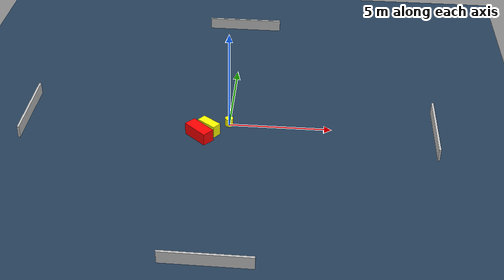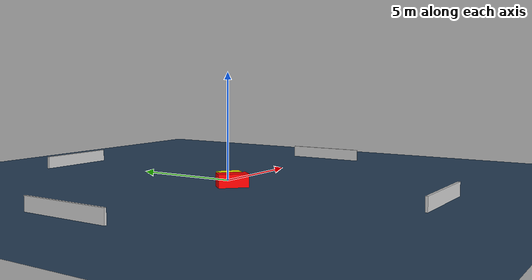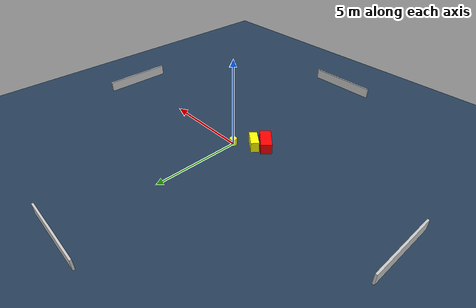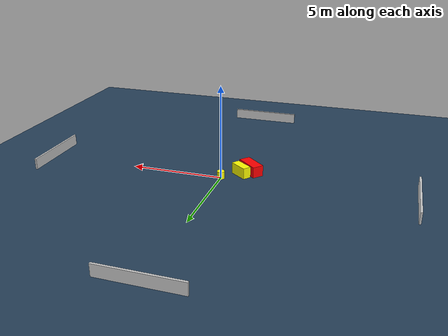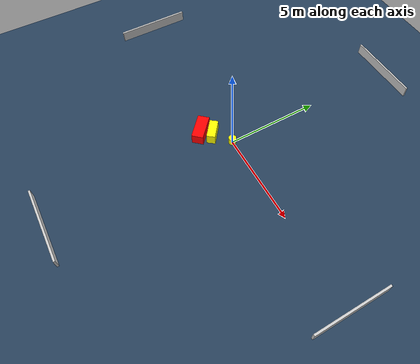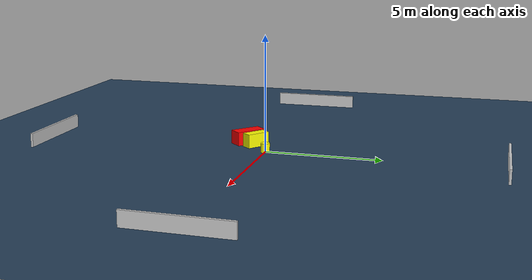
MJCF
<?xml version="1.0" ?>
<mujoco model="generated_environment">
  <option timestep="0.01" integrator="RK4" cone="elliptic"/>
  <default>
    <geom density="1"/>
  </default>
  <asset>
    <texture builtin="gradient" height="3072" name="skybox" rgb1="0.3 0.5 0.7" rgb2="0 0 0" type="skybox" width="512"/>
    <texture builtin="checker" height="300" name="groundplane" rgb1="0.2 0.3 0.4" rgb2="0.1 0.2 0.3" type="2d" width="300"/>
    <material name="groundplane" reflectance="0.2" texrepeat="5 5" texture="groundplane"/>
  </asset>
  <worldbody>
    <light dir="0 0 -1" directional="true" pos="0 0 1.5"/>
    <geom condim="3" friction="0.5 0.005 0.001" material="groundplane" name="floor" pos="0 0 0" size="0 0 0.05" type="plane"/>
    <body name="walls">
      <geom name="wall_1" condim="4" pos="-10.0 0.0 0.3" rgba="0.800000011920929 0.800000011920929 0.800000011920929 1.0" size="0.05 2.0 0.3" type="box"/>
      <geom name="wall_2" condim="4" pos="10.0 0.0 0.3" rgba="0.800000011920929 0.800000011920929 0.800000011920929 1.0" size="0.05 2.0 0.3" type="box"/>
      <geom name="wall_3" condim="4" pos="0.0 -10.0 0.3" rgba="0.800000011920929 0.800000011920929 0.800000011920929 1.0" size="2.0 0.05 0.3" type="box"/>
      <geom name="wall_4" condim="4" pos="0.0 10.0 0.3" rgba="0.800000011920929 0.800000011920929 0.800000011920929 1.0" size="2.0 0.05 0.3" type="box"/>
    </body>
    <body name="robot">
      <joint name="joint_x" type="slide" pos="0 0 0" axis="1 0 0"/>
      <joint name="joint_y" type="slide" pos="0 0 0" axis="0 1 0"/>
      <geom name="robot" type="cylinder" pos="0.0 0.0 0.2" size="0.2 0.2 0.0" mass="5.0" friction="1.0 0.005 0.0001" condim="4" rgba="1.0 1.0 0.0 1.0"/>
    </body>
    <body name="obstacle_1_movable">
      <geom name="obstacle_1_movable" condim="4" pos="-0.91348482469472 -0.6852308927532336 0.3" euler="0 0 322.3606023316455" friction="0.0 0.005 0.001" rgba="1.0 1.0 0.0 1.0" size="0.5225640444935635 0.2263198782841308 0.3" type="box" mass="0.1"/>
      <joint type="free"/>
    </body>
    <body name="obstacle_2_static">
      <geom name="obstacle_2_static" condim="4" pos="-1.3395042675639792 -1.161847354543811 0.3" euler="0 0 317.7658910107578" friction="0.0 0.005 0.001" rgba="1.0 0.0 0.0 1.0" size="0.6775552453000743 0.30724318590125776 0.3" type="box"/>
    </body>
  </worldbody>
  <actuator>
    <motor name="actuator_x" joint="joint_x" gear="1" ctrlrange="-1 1"/>
    <motor name="actuator_y" joint="joint_y" gear="1" ctrlrange="-1 1"/>
  </actuator>
</mujoco>
